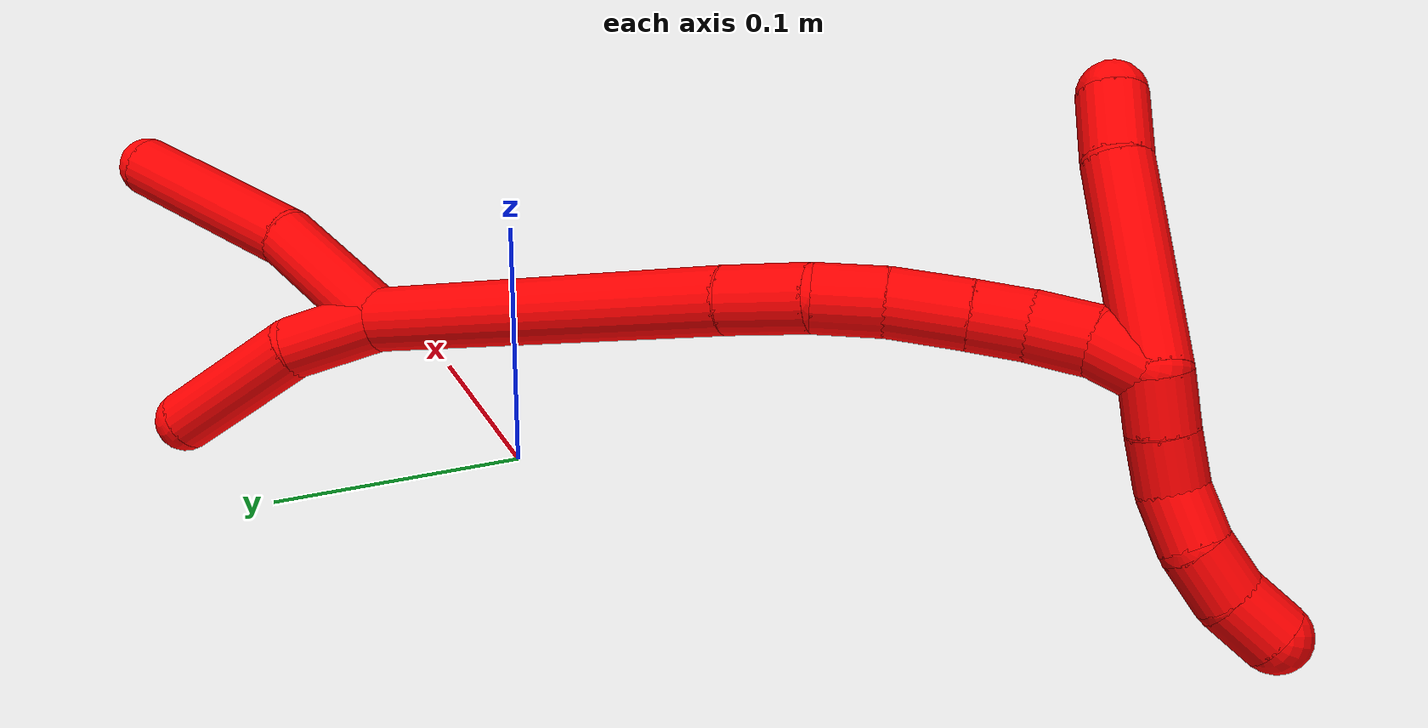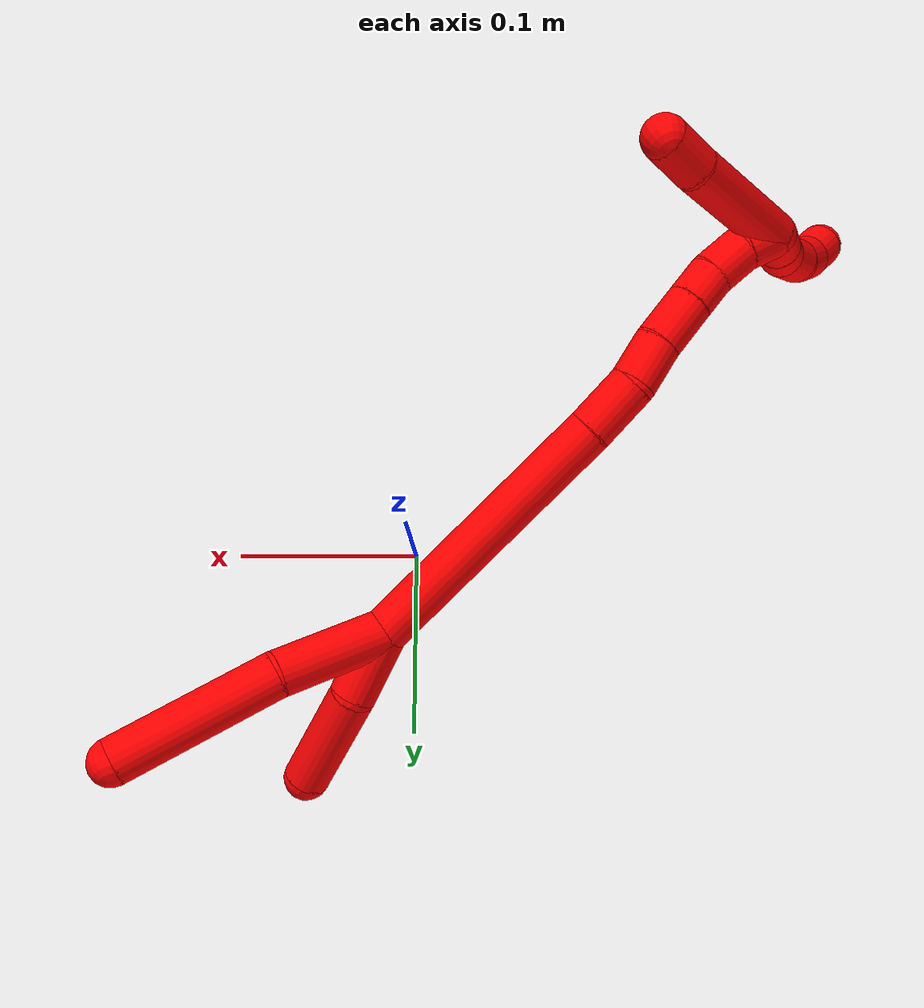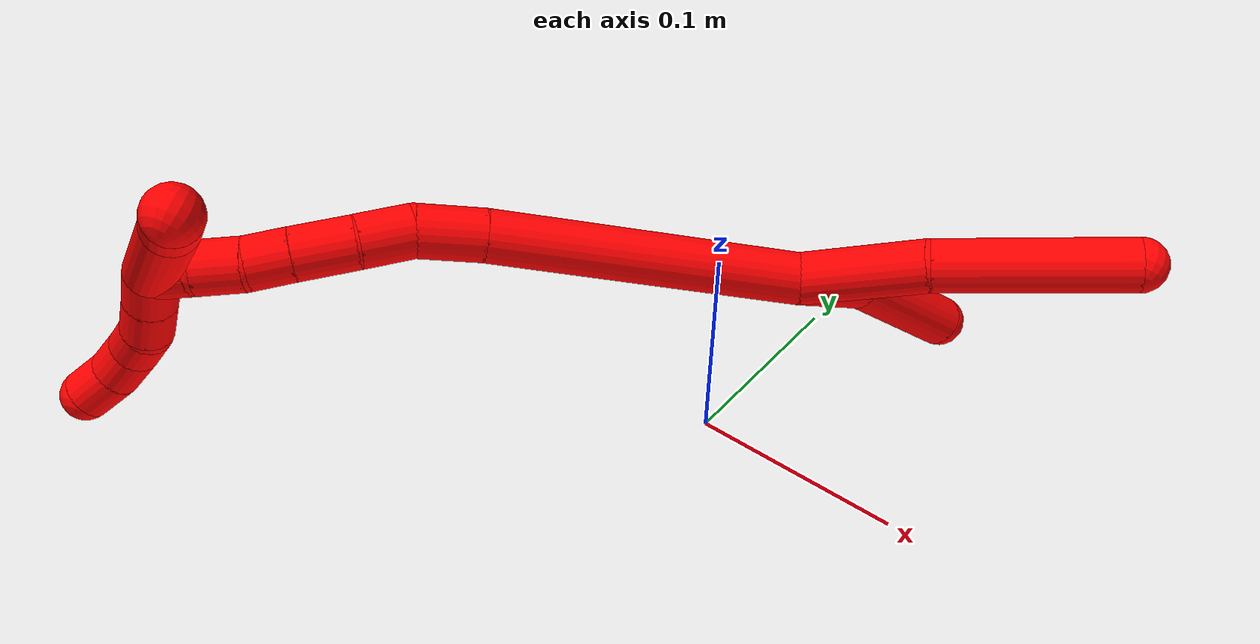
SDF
<sdf version="1.7">
 <world name="default">
  <model name="photoneo_s_sensor">
   <static>1</static>
   <pose>0 0 2 1.57079 1.57079 3.14159</pose>
   <link name="link">
    <inertial><mass>0.1</mass></inertial>
    <sensor name="sensor" type="depth">
     <update_rate>30</update_rate>
     <camera>
      <horizontal_fov>1.22</horizontal_fov>
      <image><width>1920</width><height>1200</height><format>B8G8R8</format></image>
      <clip><near>0.1</near><far>4</far></clip>
      <depth_camera><output>points</output></depth_camera>
     </camera>
     <plugin name="camera_plugin" filename="libgazebo_ros_depth_camera.so">
      <baseline>0.2</baseline>
      <alwaysOn>1</alwaysOn>
      <updateRate>0.0</updateRate>
      <cameraName>camera_ir</cameraName>
      <imageTopicName>/camera/color/image_raw</imageTopicName>
      <cameraInfoTopicName>/camera/color/camera_info</cameraInfoTopicName>
      <depthImageTopicName>/camera/depth/image_raw</depthImageTopicName>
      <depthImageCameraInfoTopicName>/camera/depth/camera_info</depthImageCameraInfoTopicName>
      <pointCloudTopicName>/camera/depth/points</pointCloudTopicName>
      <frameName>fr_optical</frameName>
      <pointCloudCutoff>0.1</pointCloudCutoff>
      <pointCloudCutoffMax>2.0</pointCloudCutoffMax>
      <distortionK1>0</distortionK1>
      <distortionK2>0</distortionK2>
      <distortionK3>0</distortionK3>
      <distortionT1>0</distortionT1>
      <distortionT2>0</distortionT2>
      <CxPrime>0</CxPrime>
      <Cx>0</Cx>
      <Cy>0</Cy>
      <focalLength>0</focalLength>
      <hackBaseline>0</hackBaseline>
     </plugin>
    </sensor>
   </link>
  </model>
  <model name="bin">
   <static>1</static>
   <link name="bottom">
    <collision name="collision-bottom">
     <pose>0 0 -0.01 0 -0 0</pose>
     <geometry><box><size>0.8 0.6 0.02</size></box></geometry>
     <surface>
      <friction><ode><mu>100</mu><mu2>100</mu2></ode></friction>
      <contact><collide_bitmask>65535</collide_bitmask></contact>
     </surface>
    </collision>
   </link>
   <link name="west_wall">
    <collision name="collision-west_wall">
     <pose>-0.41 0 0.1 0 -0 0</pose>
     <geometry><box><size>0.02 0.6 0.2</size></box></geometry>
     <surface>
      <friction><ode><mu>100</mu><mu2>100</mu2></ode></friction>
      <contact><collide_bitmask>65535</collide_bitmask></contact>
     </surface>
    </collision>
   </link>
   <link name="east_wall">
    <collision name="collision-east_wall">
     <pose>0.41 0 0.1 0 -0 0</pose>
     <geometry><box><size>0.02 0.6 0.2</size></box></geometry>
     <surface>
      <friction><ode><mu>100</mu><mu2>100</mu2></ode></friction>
      <contact><collide_bitmask>65535</collide_bitmask></contact>
     </surface>
    </collision>
   </link>
   <link name="south_wall">
    <collision name="collision-south_wall">
     <pose>0 -0.31 0.1 0 -0 0</pose>
     <geometry><box><size>0.8 0.02 0.2</size></box></geometry>
     <surface>
      <friction><ode><mu>100</mu><mu2>100</mu2></ode></friction>
      <contact><collide_bitmask>65535</collide_bitmask></contact>
     </surface>
    </collision>
   </link>
   <link name="north_wall">
    <collision name="collision-north_wall">
     <pose>0 0.31 0.1 0 -0 0</pose>
     <geometry><box><size>0.8 0.02 0.2</size></box></geometry>
     <surface>
      <friction><ode><mu>100</mu><mu2>100</mu2></ode></friction>
      <contact><collide_bitmask>65535</collide_bitmask></contact>
     </surface>
    </collision>
   </link>
  </model>
  <model name="2">
   <static>0</static>
   <link name="2">
    <collision name="collision-cylinder-e_1_2_8">
     <pose>0.027391 -0.010762 0.006991 0.99469 1.13265 0.664689</pose>
     <geometry><cylinder><radius>0.0125</radius><length>0.060496</length></cylinder></geometry>
     <surface>
      <friction><ode><mu>1.16</mu><mu2>1.16</mu2><slip1>0</slip1><slip2>0</slip2></ode></friction>
      <contact><ode><kp>1e+06</kp><kd>1</kd><max_vel>0</max_vel><min_depth>0.001</min_depth></ode></contact>
     </surface>
    </collision>
    <visual name="visual-cylinder-e_1_2_8">
     <pose>0.027391 -0.010762 0.006991 0.99469 1.13265 0.664689</pose>
     <geometry><cylinder><radius>0.0125</radius><length>0.060496</length></cylinder></geometry>
     <material><ambient>1 0 0 1</ambient></material>
    </visual>
    <collision name="collision-cylinder-e_2_8_6">
     <pose>0.097637 -0.028405 0.024883 0.563113 1.27859 0.423622</pose>
     <geometry><cylinder><radius>0.0125</radius><length>0.089504</length></cylinder></geometry>
     <surface>
      <friction><ode><mu>1.16</mu><mu2>1.16</mu2><slip1>0</slip1><slip2>0</slip2></ode></friction>
      <contact><ode><kp>1e+06</kp><kd>1</kd><max_vel>0</max_vel><min_depth>0.001</min_depth></ode></contact>
     </surface>
    </collision>
    <visual name="visual-cylinder-e_2_8_6">
     <pose>0.097637 -0.028405 0.024883 0.563113 1.27859 0.423622</pose>
     <geometry><cylinder><radius>0.0125</radius><length>0.089504</length></cylinder></geometry>
     <material><ambient>1 0 0 1</ambient></material>
    </visual>
    <collision name="collision-cylinder-e_1_2_9">
     <pose>0.013877 0.009709 0.008764 -0.836523 0.814968 -0.379114</pose>
     <geometry><cylinder><radius>0.0125</radius><length>0.03814</length></cylinder></geometry>
     <surface>
      <friction><ode><mu>1.16</mu><mu2>1.16</mu2><slip1>0</slip1><slip2>0</slip2></ode></friction>
      <contact><ode><kp>1e+06</kp><kd>1</kd><max_vel>0</max_vel><min_depth>0.001</min_depth></ode></contact>
     </surface>
    </collision>
    <visual name="visual-cylinder-e_1_2_9">
     <pose>0.013877 0.009709 0.008764 -0.836523 0.814968 -0.379114</pose>
     <geometry><cylinder><radius>0.0125</radius><length>0.03814</length></cylinder></geometry>
     <material><ambient>1 0 0 1</ambient></material>
    </visual>
    <collision name="collision-cylinder-e_2_9_5">
     <pose>0.049536 0.040201 0.024624 -1.24179 0.781305 -0.572911</pose>
     <geometry><cylinder><radius>0.0125</radius><length>0.06186</length></cylinder></geometry>
     <surface>
      <friction><ode><mu>1.16</mu><mu2>1.16</mu2><slip1>0</slip1><slip2>0</slip2></ode></friction>
      <contact><ode><kp>1e+06</kp><kd>1</kd><max_vel>0</max_vel><min_depth>0.001</min_depth></ode></contact>
     </surface>
    </collision>
    <visual name="visual-cylinder-e_2_9_5">
     <pose>0.049536 0.040201 0.024624 -1.24179 0.781305 -0.572911</pose>
     <geometry><cylinder><radius>0.0125</radius><length>0.06186</length></cylinder></geometry>
     <material><ambient>1 0 0 1</ambient></material>
    </visual>
    <collision name="collision-cylinder-e_1_2_10">
     <pose>-0.068497 -0.02014 -0.022608 2.41386 -1.15459 -2.08339</pose>
     <geometry><cylinder><radius>0.0125</radius><length>0.149781</length></cylinder></geometry>
     <surface>
      <friction><ode><mu>1.16</mu><mu2>1.16</mu2><slip1>0</slip1><slip2>0</slip2></ode></friction>
      <contact><ode><kp>1e+06</kp><kd>1</kd><max_vel>0</max_vel><min_depth>0.001</min_depth></ode></contact>
     </surface>
    </collision>
    <visual name="visual-cylinder-e_1_2_10">
     <pose>-0.068497 -0.02014 -0.022608 2.41386 -1.15459 -2.08339</pose>
     <geometry><cylinder><radius>0.0125</radius><length>0.149781</length></cylinder></geometry>
     <material><ambient>1 0 0 1</ambient></material>
    </visual>
    <collision name="collision-cylinder-e_2_10_11">
     <pose>-0.151396 -0.044275 -0.051121 2.54679 -1.11111 -2.22436</pose>
     <geometry><cylinder><radius>0.0125</radius><length>0.032141</length></cylinder></geometry>
     <surface>
      <friction><ode><mu>1.16</mu><mu2>1.16</mu2><slip1>0</slip1><slip2>0</slip2></ode></friction>
      <contact><ode><kp>1e+06</kp><kd>1</kd><max_vel>0</max_vel><min_depth>0.001</min_depth></ode></contact>
     </surface>
    </collision>
    <visual name="visual-cylinder-e_2_10_11">
     <pose>-0.151396 -0.044275 -0.051121 2.54679 -1.11111 -2.22436</pose>
     <geometry><cylinder><radius>0.0125</radius><length>0.032141</length></cylinder></geometry>
     <material><ambient>1 0 0 1</ambient></material>
    </visual>
    <collision name="collision-cylinder-e_3_11_12">
     <pose>-0.175736 -0.050538 -0.064724 2.85517 -0.891544 -2.55545</pose>
     <geometry><cylinder><radius>0.0125</radius><length>0.025546</length></cylinder></geometry>
     <surface>
      <friction><ode><mu>1.16</mu><mu2>1.16</mu2><slip1>0</slip1><slip2>0</slip2></ode></friction>
      <contact><ode><kp>1e+06</kp><kd>1</kd><max_vel>0</max_vel><min_depth>0.001</min_depth></ode></contact>
     </surface>
    </collision>
    <visual name="visual-cylinder-e_3_11_12">
     <pose>-0.175736 -0.050538 -0.064724 2.85517 -0.891544 -2.55545</pose>
     <geometry><cylinder><radius>0.0125</radius><length>0.025546</length></cylinder></geometry>
     <material><ambient>1 0 0 1</ambient></material>
    </visual>
    <collision name="collision-cylinder-e_4_12_13">
     <pose>-0.197478 -0.05395 -0.080311 2.99742 -0.976747 -2.87141</pose>
     <geometry><cylinder><radius>0.0125</radius><length>0.028487</length></cylinder></geometry>
     <surface>
      <friction><ode><mu>1.16</mu><mu2>1.16</mu2><slip1>0</slip1><slip2>0</slip2></ode></friction>
      <contact><ode><kp>1e+06</kp><kd>1</kd><max_vel>0</max_vel><min_depth>0.001</min_depth></ode></contact>
     </surface>
    </collision>
    <visual name="visual-cylinder-e_4_12_13">
     <pose>-0.197478 -0.05395 -0.080311 2.99742 -0.976747 -2.87141</pose>
     <geometry><cylinder><radius>0.0125</radius><length>0.028487</length></cylinder></geometry>
     <material><ambient>1 0 0 1</ambient></material>
    </visual>
    <collision name="collision-cylinder-e_5_13_14">
     <pose>-0.217588 -0.055675 -0.093846 3.03931 -0.971404 -2.94826</pose>
     <geometry><cylinder><radius>0.0125</radius><length>0.020121</length></cylinder></geometry>
     <surface>
      <friction><ode><mu>1.16</mu><mu2>1.16</mu2><slip1>0</slip1><slip2>0</slip2></ode></friction>
      <contact><ode><kp>1e+06</kp><kd>1</kd><max_vel>0</max_vel><min_depth>0.001</min_depth></ode></contact>
     </surface>
    </collision>
    <visual name="visual-cylinder-e_5_13_14">
     <pose>-0.217588 -0.055675 -0.093846 3.03931 -0.971404 -2.94826</pose>
     <geometry><cylinder><radius>0.0125</radius><length>0.020121</length></cylinder></geometry>
     <material><ambient>1 0 0 1</ambient></material>
    </visual>
    <collision name="collision-cylinder-e_6_14_15">
     <pose>-0.23619 -0.056234 -0.104042 -3.13696 -1.15469 3.13448</pose>
     <geometry><cylinder><radius>0.0125</radius><length>0.022512</length></cylinder></geometry>
     <surface>
      <friction><ode><mu>1.16</mu><mu2>1.16</mu2><slip1>0</slip1><slip2>0</slip2></ode></friction>
      <contact><ode><kp>1e+06</kp><kd>1</kd><max_vel>0</max_vel><min_depth>0.001</min_depth></ode></contact>
     </surface>
    </collision>
    <visual name="visual-cylinder-e_6_14_15">
     <pose>-0.23619 -0.056234 -0.104042 -3.13696 -1.15469 3.13448</pose>
     <geometry><cylinder><radius>0.0125</radius><length>0.022512</length></cylinder></geometry>
     <material><ambient>1 0 0 1</ambient></material>
    </visual>
    <collision name="collision-cylinder-e_7_15_1">
     <pose>-0.256489 -0.05377 -0.111522 -2.44673 -1.20643 2.17364</pose>
     <geometry><cylinder><radius>0.0125</radius><length>0.021412</length></cylinder></geometry>
     <surface>
      <friction><ode><mu>1.16</mu><mu2>1.16</mu2><slip1>0</slip1><slip2>0</slip2></ode></friction>
      <contact><ode><kp>1e+06</kp><kd>1</kd><max_vel>0</max_vel><min_depth>0.001</min_depth></ode></contact>
     </surface>
    </collision>
    <visual name="visual-cylinder-e_7_15_1">
     <pose>-0.256489 -0.05377 -0.111522 -2.44673 -1.20643 2.17364</pose>
     <geometry><cylinder><radius>0.0125</radius><length>0.021412</length></cylinder></geometry>
     <material><ambient>1 0 0 1</ambient></material>
    </visual>
    <collision name="collision-cylinder-e_1_1_16">
     <pose>-0.268451 -0.042134 -0.117867 -1.92645 -0.197229 0.282681</pose>
     <geometry><cylinder><radius>0.0125</radius><length>0.02</length></cylinder></geometry>
     <surface>
      <friction><ode><mu>1.16</mu><mu2>1.16</mu2><slip1>0</slip1><slip2>0</slip2></ode></friction>
      <contact><ode><kp>1e+06</kp><kd>1</kd><max_vel>0</max_vel><min_depth>0.001</min_depth></ode></contact>
     </surface>
    </collision>
    <visual name="visual-cylinder-e_1_1_16">
     <pose>-0.268451 -0.042134 -0.117867 -1.92645 -0.197229 0.282681</pose>
     <geometry><cylinder><radius>0.0125</radius><length>0.02</length></cylinder></geometry>
     <material><ambient>1 0 0 1</ambient></material>
    </visual>
    <collision name="collision-cylinder-e_2_16_17">
     <pose>-0.272508 -0.024002 -0.125241 -1.98775 -0.211282 0.323035</pose>
     <geometry><cylinder><radius>0.0125</radius><length>0.02</length></cylinder></geometry>
     <surface>
      <friction><ode><mu>1.16</mu><mu2>1.16</mu2><slip1>0</slip1><slip2>0</slip2></ode></friction>
      <contact><ode><kp>1e+06</kp><kd>1</kd><max_vel>0</max_vel><min_depth>0.001</min_depth></ode></contact>
     </surface>
    </collision>
    <visual name="visual-cylinder-e_2_16_17">
     <pose>-0.272508 -0.024002 -0.125241 -1.98775 -0.211282 0.323035</pose>
     <geometry><cylinder><radius>0.0125</radius><length>0.02</length></cylinder></geometry>
     <material><ambient>1 0 0 1</ambient></material>
    </visual>
    <collision name="collision-cylinder-e_3_17_18">
     <pose>-0.279652 -0.006862 -0.131901 -1.88881 -0.529 0.716319</pose>
     <geometry><cylinder><radius>0.0125</radius><length>0.02</length></cylinder></geometry>
     <surface>
      <friction><ode><mu>1.16</mu><mu2>1.16</mu2><slip1>0</slip1><slip2>0</slip2></ode></friction>
      <contact><ode><kp>1e+06</kp><kd>1</kd><max_vel>0</max_vel><min_depth>0.001</min_depth></ode></contact>
     </surface>
    </collision>
    <visual name="visual-cylinder-e_3_17_18">
     <pose>-0.279652 -0.006862 -0.131901 -1.88881 -0.529 0.716319</pose>
     <geometry><cylinder><radius>0.0125</radius><length>0.02</length></cylinder></geometry>
     <material><ambient>1 0 0 1</ambient></material>
    </visual>
    <collision name="collision-cylinder-e_4_18_19">
     <pose>-0.289853 0.008083 -0.139886 -2.23561 -0.541559 1.0366</pose>
     <geometry><cylinder><radius>0.0125</radius><length>0.02</length></cylinder></geometry>
     <surface>
      <friction><ode><mu>1.16</mu><mu2>1.16</mu2><slip1>0</slip1><slip2>0</slip2></ode></friction>
      <contact><ode><kp>1e+06</kp><kd>1</kd><max_vel>0</max_vel><min_depth>0.001</min_depth></ode></contact>
     </surface>
    </collision>
    <visual name="visual-cylinder-e_4_18_19">
     <pose>-0.289853 0.008083 -0.139886 -2.23561 -0.541559 1.0366</pose>
     <geometry><cylinder><radius>0.0125</radius><length>0.02</length></cylinder></geometry>
     <material><ambient>1 0 0 1</ambient></material>
    </visual>
    <collision name="collision-cylinder-e_5_19_4">
     <pose>-0.301336 0.01949 -0.151354 -2.49519 -0.685202 1.63358</pose>
     <geometry><cylinder><radius>0.0125</radius><length>0.02</length></cylinder></geometry>
     <surface>
      <friction><ode><mu>1.16</mu><mu2>1.16</mu2><slip1>0</slip1><slip2>0</slip2></ode></friction>
      <contact><ode><kp>1e+06</kp><kd>1</kd><max_vel>0</max_vel><min_depth>0.001</min_depth></ode></contact>
     </surface>
    </collision>
    <visual name="visual-cylinder-e_5_19_4">
     <pose>-0.301336 0.01949 -0.151354 -2.49519 -0.685202 1.63358</pose>
     <geometry><cylinder><radius>0.0125</radius><length>0.02</length></cylinder></geometry>
     <material><ambient>1 0 0 1</ambient></material>
    </visual>
    <collision name="collision-cylinder-e_1_1_20">
     <pose>-0.248903 -0.084099 -0.115875 1.61415 0.492195 0.513085</pose>
     <geometry><cylinder><radius>0.0125</radius><length>0.074441</length></cylinder></geometry>
     <surface>
      <friction><ode><mu>1.16</mu><mu2>1.16</mu2><slip1>0</slip1><slip2>0</slip2></ode></friction>
      <contact><ode><kp>1e+06</kp><kd>1</kd><max_vel>0</max_vel><min_depth>0.001</min_depth></ode></contact>
     </surface>
    </collision>
    <visual name="visual-cylinder-e_1_1_20">
     <pose>-0.248903 -0.084099 -0.115875 1.61415 0.492195 0.513085</pose>
     <geometry><cylinder><radius>0.0125</radius><length>0.074441</length></cylinder></geometry>
     <material><ambient>1 0 0 1</ambient></material>
    </visual>
    <collision name="collision-cylinder-e_2_20_3">
     <pose>-0.225602 -0.128071 -0.119584 1.77228 0.463316 0.562568</pose>
     <geometry><cylinder><radius>0.0125</radius><length>0.025559</length></cylinder></geometry>
     <surface>
      <friction><ode><mu>1.16</mu><mu2>1.16</mu2><slip1>0</slip1><slip2>0</slip2></ode></friction>
      <contact><ode><kp>1e+06</kp><kd>1</kd><max_vel>0</max_vel><min_depth>0.001</min_depth></ode></contact>
     </surface>
    </collision>
    <visual name="visual-cylinder-e_2_20_3">
     <pose>-0.225602 -0.128071 -0.119584 1.77228 0.463316 0.562568</pose>
     <geometry><cylinder><radius>0.0125</radius><length>0.025559</length></cylinder></geometry>
     <material><ambient>1 0 0 1</ambient></material>
    </visual>
    <collision name="collision-sphere-3">
     <pose>-0.219891 -0.139272 -0.121872 0 -0 0</pose>
     <geometry><sphere><radius>0.0125</radius></sphere></geometry>
     <surface>
      <friction><ode><mu>1.16</mu><mu2>1.16</mu2><slip1>0</slip1><slip2>0</slip2></ode></friction>
      <contact><ode><kp>1e+06</kp><kd>1</kd><max_vel>0</max_vel><min_depth>0.001</min_depth></ode></contact>
     </surface>
    </collision>
    <visual name="visual-sphere-3">
     <pose>-0.219891 -0.139272 -0.121872 0 -0 0</pose>
     <geometry><sphere><radius>0.0125</radius></sphere></geometry>
     <material><ambient>1 0 0 1</ambient></material>
    </visual>
    <collision name="collision-sphere-20">
     <pose>-0.231314 -0.11687 -0.117296 0 -0 0</pose>
     <geometry><sphere><radius>0.0125</radius></sphere></geometry>
     <surface>
      <friction><ode><mu>1.16</mu><mu2>1.16</mu2><slip1>0</slip1><slip2>0</slip2></ode></friction>
      <contact><ode><kp>1e+06</kp><kd>1</kd><max_vel>0</max_vel><min_depth>0.001</min_depth></ode></contact>
     </surface>
    </collision>
    <visual name="visual-sphere-20">
     <pose>-0.231314 -0.11687 -0.117296 0 -0 0</pose>
     <geometry><sphere><radius>0.0125</radius></sphere></geometry>
     <material><ambient>1 0 0 1</ambient></material>
    </visual>
    <collision name="collision-sphere-4">
     <pose>-0.307665 0.024154 -0.157534 0 -0 0</pose>
     <geometry><sphere><radius>0.0125</radius></sphere></geometry>
     <surface>
      <friction><ode><mu>1.16</mu><mu2>1.16</mu2><slip1>0</slip1><slip2>0</slip2></ode></friction>
      <contact><ode><kp>1e+06</kp><kd>1</kd><max_vel>0</max_vel><min_depth>0.001</min_depth></ode></contact>
     </surface>
    </collision>
    <visual name="visual-sphere-4">
     <pose>-0.307665 0.024154 -0.157534 0 -0 0</pose>
     <geometry><sphere><radius>0.0125</radius></sphere></geometry>
     <material><ambient>1 0 0 1</ambient></material>
    </visual>
    <collision name="collision-sphere-10">
     <pose>-0.136994 -0.04028 -0.045215 0 -0 0</pose>
     <geometry><sphere><radius>0.0125</radius></sphere></geometry>
     <surface>
      <friction><ode><mu>1.16</mu><mu2>1.16</mu2><slip1>0</slip1><slip2>0</slip2></ode></friction>
      <contact><ode><kp>1e+06</kp><kd>1</kd><max_vel>0</max_vel><min_depth>0.001</min_depth></ode></contact>
     </surface>
    </collision>
    <visual name="visual-sphere-10">
     <pose>-0.136994 -0.04028 -0.045215 0 -0 0</pose>
     <geometry><sphere><radius>0.0125</radius></sphere></geometry>
     <material><ambient>1 0 0 1</ambient></material>
    </visual>
    <collision name="collision-sphere-5">
     <pose>0.071317 0.060984 0.031719 0 -0 0</pose>
     <geometry><sphere><radius>0.0125</radius></sphere></geometry>
     <surface>
      <friction><ode><mu>1.16</mu><mu2>1.16</mu2><slip1>0</slip1><slip2>0</slip2></ode></friction>
      <contact><ode><kp>1e+06</kp><kd>1</kd><max_vel>0</max_vel><min_depth>0.001</min_depth></ode></contact>
     </surface>
    </collision>
    <visual name="visual-sphere-5">
     <pose>0.071317 0.060984 0.031719 0 -0 0</pose>
     <geometry><sphere><radius>0.0125</radius></sphere></geometry>
     <material><ambient>1 0 0 1</ambient></material>
    </visual>
    <collision name="collision-sphere-6">
     <pose>0.140492 -0.035287 0.035784 0 -0 0</pose>
     <geometry><sphere><radius>0.0125</radius></sphere></geometry>
     <surface>
      <friction><ode><mu>1.16</mu><mu2>1.16</mu2><slip1>0</slip1><slip2>0</slip2></ode></friction>
      <contact><ode><kp>1e+06</kp><kd>1</kd><max_vel>0</max_vel><min_depth>0.001</min_depth></ode></contact>
     </surface>
    </collision>
    <visual name="visual-sphere-6">
     <pose>0.140492 -0.035287 0.035784 0 -0 0</pose>
     <geometry><sphere><radius>0.0125</radius></sphere></geometry>
     <material><ambient>1 0 0 1</ambient></material>
    </visual>
    <collision name="collision-sphere-9">
     <pose>0.027754 0.019419 0.017528 0 -0 0</pose>
     <geometry><sphere><radius>0.0125</radius></sphere></geometry>
     <surface>
      <friction><ode><mu>1.16</mu><mu2>1.16</mu2><slip1>0</slip1><slip2>0</slip2></ode></friction>
      <contact><ode><kp>1e+06</kp><kd>1</kd><max_vel>0</max_vel><min_depth>0.001</min_depth></ode></contact>
     </surface>
    </collision>
    <visual name="visual-sphere-9">
     <pose>0.027754 0.019419 0.017528 0 -0 0</pose>
     <geometry><sphere><radius>0.0125</radius></sphere></geometry>
     <material><ambient>1 0 0 1</ambient></material>
    </visual>
    <collision name="collision-sphere-2">
     <geometry><sphere><radius>0.0125</radius></sphere></geometry>
     <surface>
      <friction><ode><mu>1.16</mu><mu2>1.16</mu2><slip1>0</slip1><slip2>0</slip2></ode></friction>
      <contact><ode><kp>1e+06</kp><kd>1</kd><max_vel>0</max_vel><min_depth>0.001</min_depth></ode></contact>
     </surface>
    </collision>
    <visual name="visual-sphere-2">
     <geometry><sphere><radius>0.0125</radius></sphere></geometry>
     <material><ambient>1 0 0 1</ambient></material>
    </visual>
    <collision name="collision-sphere-19">
     <pose>-0.295008 0.014827 -0.145173 0 -0 0</pose>
     <geometry><sphere><radius>0.0125</radius></sphere></geometry>
     <surface>
      <friction><ode><mu>1.16</mu><mu2>1.16</mu2><slip1>0</slip1><slip2>0</slip2></ode></friction>
      <contact><ode><kp>1e+06</kp><kd>1</kd><max_vel>0</max_vel><min_depth>0.001</min_depth></ode></contact>
     </surface>
    </collision>
    <visual name="visual-sphere-19">
     <pose>-0.295008 0.014827 -0.145173 0 -0 0</pose>
     <geometry><sphere><radius>0.0125</radius></sphere></geometry>
     <material><ambient>1 0 0 1</ambient></material>
    </visual>
    <collision name="collision-sphere-8">
     <pose>0.054782 -0.021524 0.013982 0 -0 0</pose>
     <geometry><sphere><radius>0.0125</radius></sphere></geometry>
     <surface>
      <friction><ode><mu>1.16</mu><mu2>1.16</mu2><slip1>0</slip1><slip2>0</slip2></ode></friction>
      <contact><ode><kp>1e+06</kp><kd>1</kd><max_vel>0</max_vel><min_depth>0.001</min_depth></ode></contact>
     </surface>
    </collision>
    <visual name="visual-sphere-8">
     <pose>0.054782 -0.021524 0.013982 0 -0 0</pose>
     <geometry><sphere><radius>0.0125</radius></sphere></geometry>
     <material><ambient>1 0 0 1</ambient></material>
    </visual>
    <collision name="collision-sphere-11">
     <pose>-0.165798 -0.048271 -0.057026 0 -0 0</pose>
     <geometry><sphere><radius>0.0125</radius></sphere></geometry>
     <surface>
      <friction><ode><mu>1.16</mu><mu2>1.16</mu2><slip1>0</slip1><slip2>0</slip2></ode></friction>
      <contact><ode><kp>1e+06</kp><kd>1</kd><max_vel>0</max_vel><min_depth>0.001</min_depth></ode></contact>
     </surface>
    </collision>
    <visual name="visual-sphere-11">
     <pose>-0.165798 -0.048271 -0.057026 0 -0 0</pose>
     <geometry><sphere><radius>0.0125</radius></sphere></geometry>
     <material><ambient>1 0 0 1</ambient></material>
    </visual>
    <collision name="collision-sphere-12">
     <pose>-0.185674 -0.052805 -0.072421 0 -0 0</pose>
     <geometry><sphere><radius>0.0125</radius></sphere></geometry>
     <surface>
      <friction><ode><mu>1.16</mu><mu2>1.16</mu2><slip1>0</slip1><slip2>0</slip2></ode></friction>
      <contact><ode><kp>1e+06</kp><kd>1</kd><max_vel>0</max_vel><min_depth>0.001</min_depth></ode></contact>
     </surface>
    </collision>
    <visual name="visual-sphere-12">
     <pose>-0.185674 -0.052805 -0.072421 0 -0 0</pose>
     <geometry><sphere><radius>0.0125</radius></sphere></geometry>
     <material><ambient>1 0 0 1</ambient></material>
    </visual>
    <collision name="collision-sphere-13">
     <pose>-0.209281 -0.055096 -0.088201 0 -0 0</pose>
     <geometry><sphere><radius>0.0125</radius></sphere></geometry>
     <surface>
      <friction><ode><mu>1.16</mu><mu2>1.16</mu2><slip1>0</slip1><slip2>0</slip2></ode></friction>
      <contact><ode><kp>1e+06</kp><kd>1</kd><max_vel>0</max_vel><min_depth>0.001</min_depth></ode></contact>
     </surface>
    </collision>
    <visual name="visual-sphere-13">
     <pose>-0.209281 -0.055096 -0.088201 0 -0 0</pose>
     <geometry><sphere><radius>0.0125</radius></sphere></geometry>
     <material><ambient>1 0 0 1</ambient></material>
    </visual>
    <collision name="collision-sphere-14">
     <pose>-0.225894 -0.056255 -0.099492 0 -0 0</pose>
     <geometry><sphere><radius>0.0125</radius></sphere></geometry>
     <surface>
      <friction><ode><mu>1.16</mu><mu2>1.16</mu2><slip1>0</slip1><slip2>0</slip2></ode></friction>
      <contact><ode><kp>1e+06</kp><kd>1</kd><max_vel>0</max_vel><min_depth>0.001</min_depth></ode></contact>
     </surface>
    </collision>
    <visual name="visual-sphere-14">
     <pose>-0.225894 -0.056255 -0.099492 0 -0 0</pose>
     <geometry><sphere><radius>0.0125</radius></sphere></geometry>
     <material><ambient>1 0 0 1</ambient></material>
    </visual>
    <collision name="collision-sphere-15">
     <pose>-0.246486 -0.056212 -0.108592 0 -0 0</pose>
     <geometry><sphere><radius>0.0125</radius></sphere></geometry>
     <surface>
      <friction><ode><mu>1.16</mu><mu2>1.16</mu2><slip1>0</slip1><slip2>0</slip2></ode></friction>
      <contact><ode><kp>1e+06</kp><kd>1</kd><max_vel>0</max_vel><min_depth>0.001</min_depth></ode></contact>
     </surface>
    </collision>
    <visual name="visual-sphere-15">
     <pose>-0.246486 -0.056212 -0.108592 0 -0 0</pose>
     <geometry><sphere><radius>0.0125</radius></sphere></geometry>
     <material><ambient>1 0 0 1</ambient></material>
    </visual>
    <collision name="collision-sphere-1">
     <pose>-0.266492 -0.051327 -0.114453 0 -0 0</pose>
     <geometry><sphere><radius>0.0125</radius></sphere></geometry>
     <surface>
      <friction><ode><mu>1.16</mu><mu2>1.16</mu2><slip1>0</slip1><slip2>0</slip2></ode></friction>
      <contact><ode><kp>1e+06</kp><kd>1</kd><max_vel>0</max_vel><min_depth>0.001</min_depth></ode></contact>
     </surface>
    </collision>
    <visual name="visual-sphere-1">
     <pose>-0.266492 -0.051327 -0.114453 0 -0 0</pose>
     <geometry><sphere><radius>0.0125</radius></sphere></geometry>
     <material><ambient>1 0 0 1</ambient></material>
    </visual>
    <collision name="collision-sphere-18">
     <pose>-0.284699 0.001338 -0.1346 0 -0 0</pose>
     <geometry><sphere><radius>0.0125</radius></sphere></geometry>
     <surface>
      <friction><ode><mu>1.16</mu><mu2>1.16</mu2><slip1>0</slip1><slip2>0</slip2></ode></friction>
      <contact><ode><kp>1e+06</kp><kd>1</kd><max_vel>0</max_vel><min_depth>0.001</min_depth></ode></contact>
     </surface>
    </collision>
    <visual name="visual-sphere-18">
     <pose>-0.284699 0.001338 -0.1346 0 -0 0</pose>
     <geometry><sphere><radius>0.0125</radius></sphere></geometry>
     <material><ambient>1 0 0 1</ambient></material>
    </visual>
    <collision name="collision-sphere-16">
     <pose>-0.270411 -0.032942 -0.121282 0 -0 0</pose>
     <geometry><sphere><radius>0.0125</radius></sphere></geometry>
     <surface>
      <friction><ode><mu>1.16</mu><mu2>1.16</mu2><slip1>0</slip1><slip2>0</slip2></ode></friction>
      <contact><ode><kp>1e+06</kp><kd>1</kd><max_vel>0</max_vel><min_depth>0.001</min_depth></ode></contact>
     </surface>
    </collision>
    <visual name="visual-sphere-16">
     <pose>-0.270411 -0.032942 -0.121282 0 -0 0</pose>
     <geometry><sphere><radius>0.0125</radius></sphere></geometry>
     <material><ambient>1 0 0 1</ambient></material>
    </visual>
    <collision name="collision-sphere-17">
     <pose>-0.274605 -0.015062 -0.129201 0 -0 0</pose>
     <geometry><sphere><radius>0.0125</radius></sphere></geometry>
     <surface>
      <friction><ode><mu>1.16</mu><mu2>1.16</mu2><slip1>0</slip1><slip2>0</slip2></ode></friction>
      <contact><ode><kp>1e+06</kp><kd>1</kd><max_vel>0</max_vel><min_depth>0.001</min_depth></ode></contact>
     </surface>
    </collision>
    <visual name="visual-sphere-17">
     <pose>-0.274605 -0.015062 -0.129201 0 -0 0</pose>
     <geometry><sphere><radius>0.0125</radius></sphere></geometry>
     <material><ambient>1 0 0 1</ambient></material>
    </visual>
    <inertial>
     <pose>-0.105292 -0.028778 -0.048118 0 -0 0</pose>
     <mass>0.75</mass>
     <inertia><ixx>-7e-05</ixx><ixy>0</ixy><ixz>0</ixz><iyy>0.000295</iyy><iyz>0</iyz><izz>0.000258</izz></inertia>
    </inertial>
   </link>
   <pose>0.012916 0.051406 0.064884 -1.17036 0.102484 0.346827</pose>
  </model>
 </world>
</sdf>
